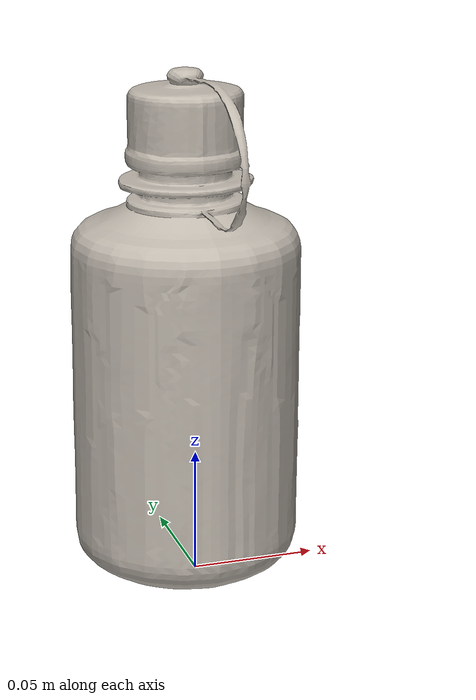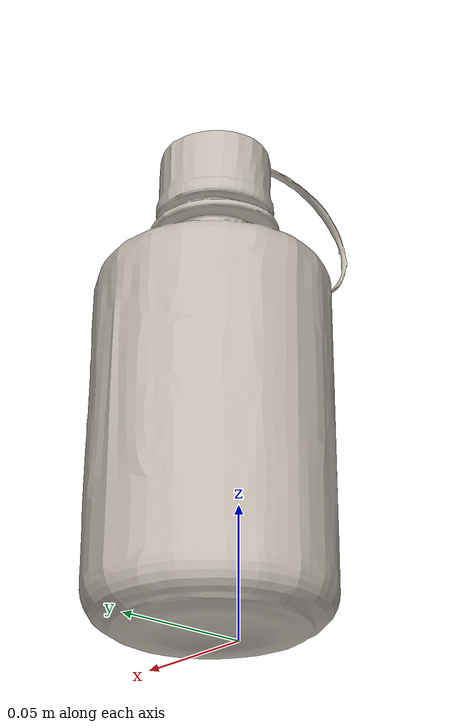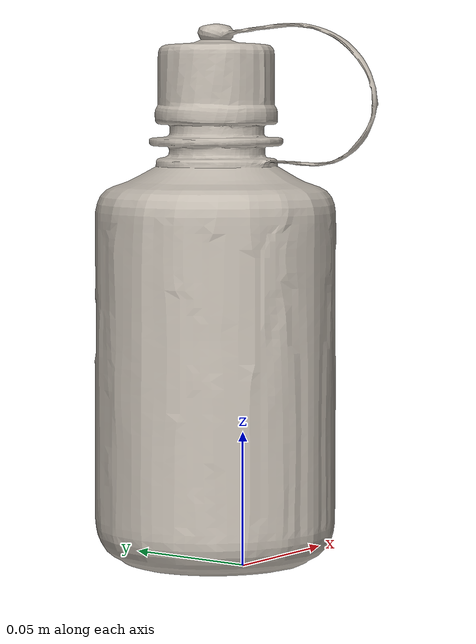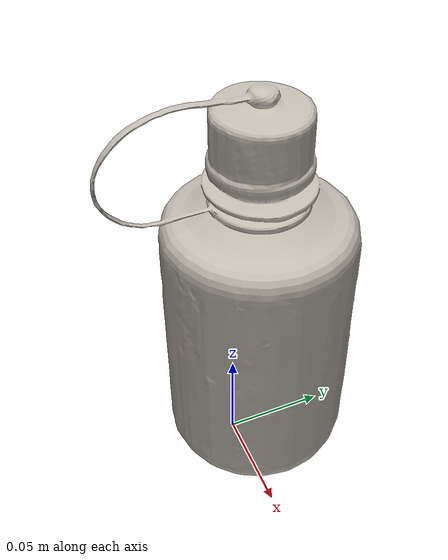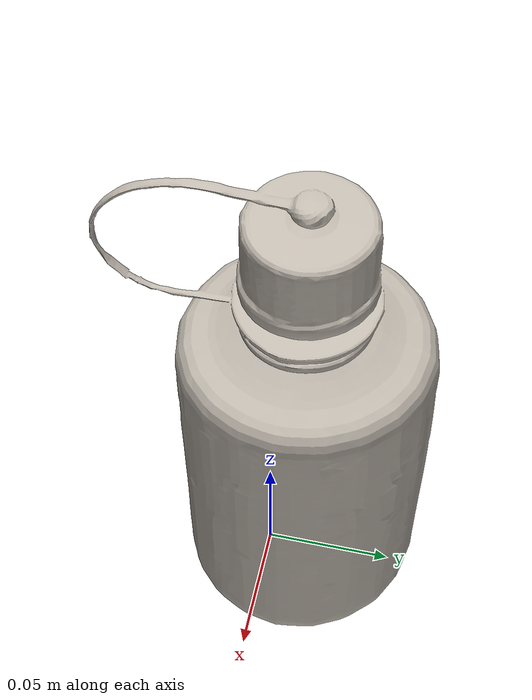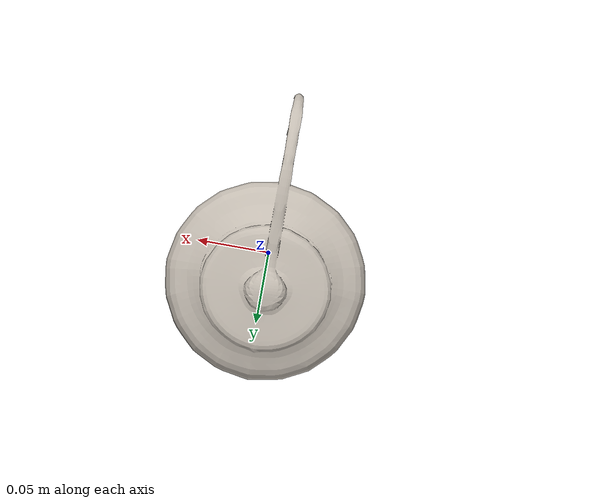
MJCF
<mujoco model="001_bottle_base19">
  <compiler angle="radian" meshdir="."/>

  <asset>
    <texture name="tex" type="2d" file="assets/material_0.png"/>
    <material name="mat" texture="tex"/>
    <mesh name="visual_mesh" file="assets/V_001_bottle_base19.obj" scale="0.13 0.13 0.13"/>
  </asset>

  <worldbody>
    <body name="001_bottle_base19" quat="0.707106781 0.707106781 0.0 0.0">
      <joint name="free_joint" type="free"/>
      <geom name="visual" type="mesh" mesh="visual_mesh" material="mat" group="0"/>
      <geom name="collision" type="mesh" mesh="visual_mesh" rgba="0 0 0 0" group="1"/>
    </body>
  </worldbody>
</mujoco>
